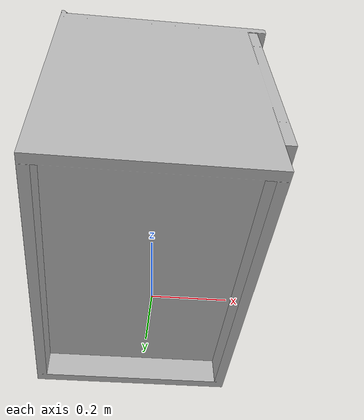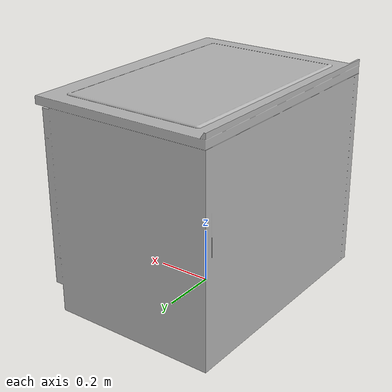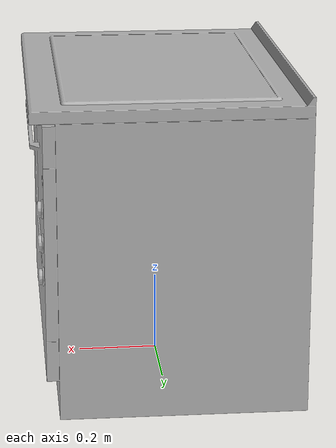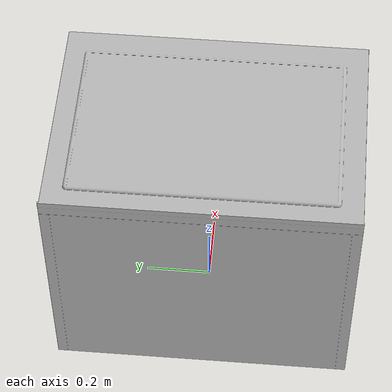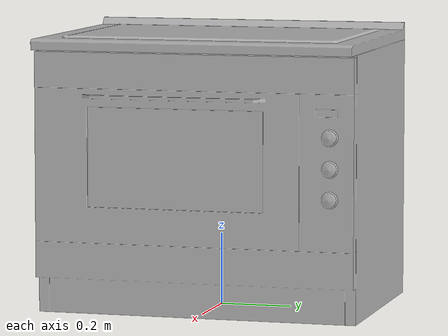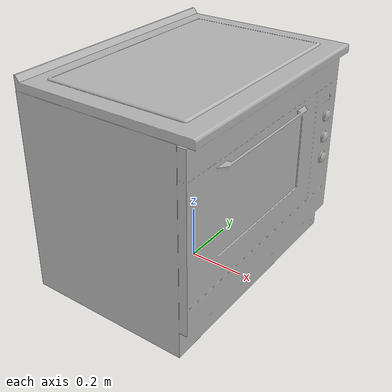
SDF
<?xml version='1.0'?>
<sdf version='1.4'>
  <model name='283'>
    <pose>0 0 0 0 0 0</pose>
    <static>true</static>
    <link name='link'>
      <collision name='collision'>
        <pose>0 0 0 0 0 0</pose>
        <geometry>
          <box>
            <size>0.66 0.9 2</size>
          </box>
        </geometry>
      </collision>
      <visual name='visual'>
        <pose>0 0 0 0 0 0</pose>
        <geometry>
          <mesh><uri>model://283/283.dae</uri></mesh>
        </geometry>
      </visual>
    </link>
  </model>
</sdf>
